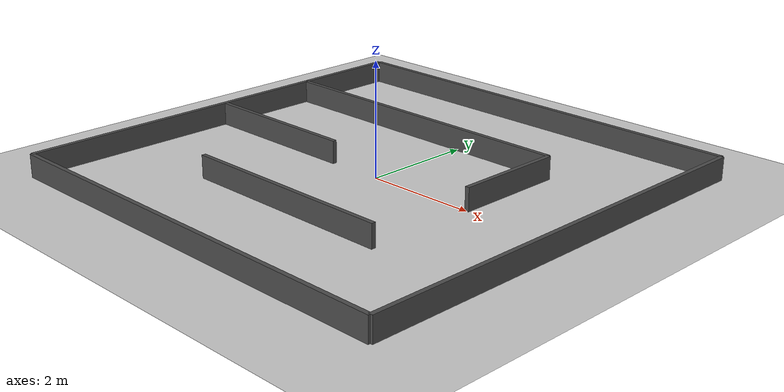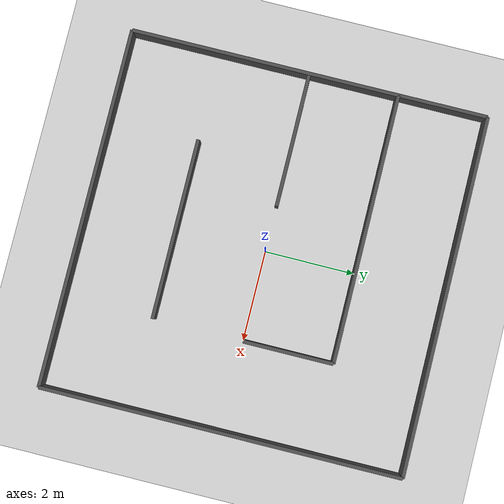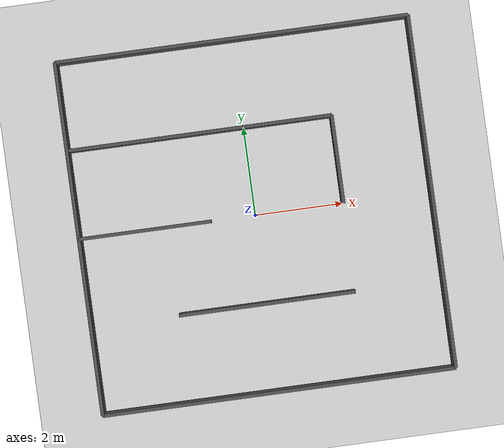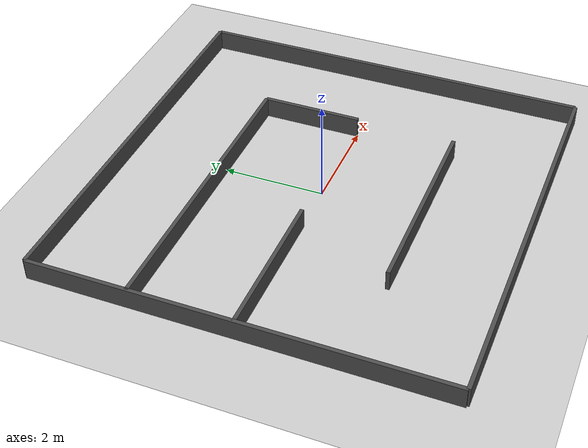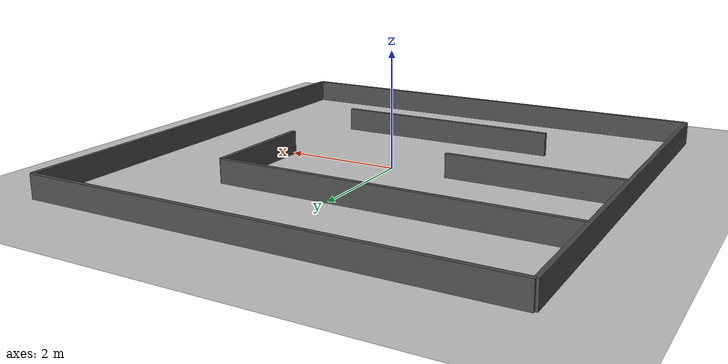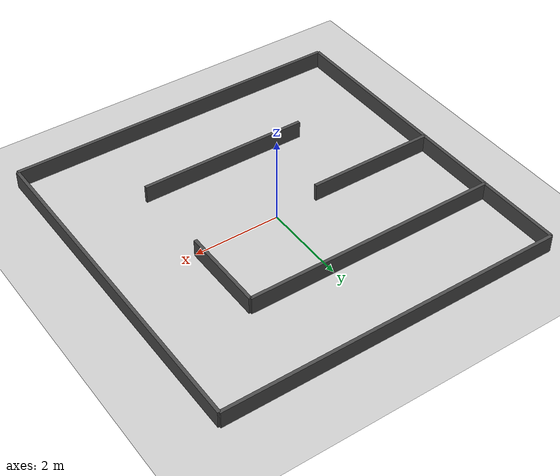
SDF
<sdf version="1.6">
 <world name="default">
  <plugin name="ros_gz_set_pose" filename="libros_gz_sim_set_entity_pose_system.so">
   <gz_args><topic>/world/default/set_entity_pose</topic></gz_args>
  </plugin>
  <plugin filename="gz-sim-physics-system" name="gz::sim::systems::Physics"/>
  <plugin filename="gz-sim-user-commands-system" name="gz::sim::systems::UserCommands"/>
  <plugin filename="gz-sim-scene-broadcaster-system" name="gz::sim::systems::SceneBroadcaster"/>
  <plugin filename="gz-sim-sensors-system" name="gz::sim::systems::Sensors">
   <render_engine>ogre2</render_engine>
  </plugin>
  <plugin filename="gz-sim-imu-system" name="gz::sim::systems::Imu"/>
  <light name="maze_sun" type="directional">
   <pose>0 0 10 0 -0 0</pose>
   <diffuse>0.8 0.8 0.8 1</diffuse>
   <specular>0.2 0.2 0.2 1</specular>
   <attenuation>
    <range>1000</range>
    <constant>0.9</constant>
    <linear>0.01</linear>
    <quadratic>0.001</quadratic>
   </attenuation>
   <direction>-0.5 0.1 -0.9</direction>
  </light>
  <model name="ground_plane">
   <static>1</static>
   <link name="link">
    <collision name="collision">
     <geometry><plane><normal>0 0 1</normal><size>100 100</size></plane></geometry>
     <surface><friction><ode><mu>100</mu><mu2>50</mu2></ode></friction></surface>
    </collision>
    <visual name="visual">
     <cast_shadows>0</cast_shadows>
     <geometry><plane><normal>0 0 1</normal><size>100 100</size></plane></geometry>
     <material>
      <script><uri>file://media/materials/scripts/gazebo.material</uri><name>Gazebo/Grey</name></script>
     </material>
    </visual>
   </link>
  </model>
  <gravity>0 0 -9.8</gravity>
  <magnetic_field>6e-06 2.3e-05 -4.2e-05</magnetic_field>
  <atmosphere type="adiabatic"/>
  <physics name="default_physics" default="0" type="ode">
   <max_step_size>0.001</max_step_size>
   <real_time_factor>1</real_time_factor>
   <real_time_update_rate>1000</real_time_update_rate>
  </physics>
  <scene><ambient>0.4 0.4 0.4 1</ambient><background>0.7 0.7 0.7 1</background><shadows>1</shadows></scene>
  <spherical_coordinates>
   <surface_model>EARTH_WGS84</surface_model>
   <latitude_deg>0</latitude_deg>
   <longitude_deg>0</longitude_deg>
   <elevation>0</elevation>
   <heading_deg>0</heading_deg>
  </spherical_coordinates>
  <model name="unit_box_clone_0">
   <static>1</static>
   <pose>0 -2 0.2031 0 -0 0</pose>
   <link name="link">
    <inertial>
     <mass>1000</mass>
     <inertia>
      <ixx>0.166667</ixx>
      <ixy>0</ixy>
      <ixz>0</ixz>
      <iyy>0.166667</iyy>
      <iyz>0</iyz>
      <izz>0.166667</izz>
     </inertia>
    </inertial>
    <collision name="collision"><geometry><box><size>4 0.077351 0.407845</size></box></geometry></collision>
    <visual name="visual">
     <geometry><box><size>4 0.077351 0.407845</size></box></geometry>
     <material>
      <script><name>Gazebo/DarkGrey</name><uri>file://media/materials/scripts/gazebo.material</uri></script>
     </material>
    </visual>
   </link>
  </model>
  <model name="unit_box_clone_0_clone_0_clone">
   <static>1</static>
   <pose>-2.5 0 0.2031 0 -0 0</pose>
   <link name="link">
    <inertial>
     <mass>1000</mass>
     <inertia>
      <ixx>0.166667</ixx>
      <ixy>0</ixy>
      <ixz>0</ixz>
      <iyy>0.166667</iyy>
      <iyz>0</iyz>
      <izz>0.166667</izz>
     </inertia>
    </inertial>
    <collision name="collision"><geometry><box><size>3 0.077351 0.407845</size></box></geometry></collision>
    <visual name="visual">
     <geometry><box><size>3 0.077351 0.407845</size></box></geometry>
     <material>
      <script><name>Gazebo/DarkGrey</name><uri>file://media/materials/scripts/gazebo.material</uri></script>
     </material>
    </visual>
   </link>
  </model>
  <model name="unit_box_clone_0_clone_0_clone_0">
   <static>1</static>
   <pose>-4 0 0.2031 0 0 1.5708</pose>
   <link name="link">
    <inertial>
     <mass>1000</mass>
     <inertia>
      <ixx>0.166667</ixx>
      <ixy>0</ixy>
      <ixz>0</ixz>
      <iyy>0.166667</iyy>
      <iyz>0</iyz>
      <izz>0.166667</izz>
     </inertia>
    </inertial>
    <collision name="collision"><geometry><box><size>8 0.077351 0.407845</size></box></geometry></collision>
    <visual name="visual">
     <geometry><box><size>8 0.077351 0.407845</size></box></geometry>
     <material>
      <script><name>Gazebo/DarkGrey</name><uri>file://media/materials/scripts/gazebo.material</uri></script>
     </material>
    </visual>
   </link>
  </model>
  <model name="unit_box_clone_0_clone_0_clone_0_clone_clone">
   <static>1</static>
   <pose>2 1 0.2031 0 0 1.5708</pose>
   <link name="link">
    <inertial>
     <mass>1000</mass>
     <inertia>
      <ixx>0.166667</ixx>
      <ixy>0</ixy>
      <ixz>0</ixz>
      <iyy>0.166667</iyy>
      <iyz>0</iyz>
      <izz>0.166667</izz>
     </inertia>
    </inertial>
    <collision name="collision"><geometry><box><size>2 0.077351 0.407845</size></box></geometry></collision>
    <visual name="visual">
     <geometry><box><size>2 0.077351 0.407845</size></box></geometry>
     <material>
      <script><name>Gazebo/DarkGrey</name><uri>file://media/materials/scripts/gazebo.material</uri></script>
     </material>
    </visual>
   </link>
  </model>
  <model name="unit_box_clone_0_clone_clone_clone_clone_clone">
   <static>1</static>
   <pose>0 4 0.2031 0 -0 0</pose>
   <link name="link">
    <inertial>
     <mass>1000</mass>
     <inertia>
      <ixx>0.166667</ixx>
      <ixy>0</ixy>
      <ixz>0</ixz>
      <iyy>0.166667</iyy>
      <iyz>0</iyz>
      <izz>0.166667</izz>
     </inertia>
    </inertial>
    <collision name="collision"><geometry><box><size>8 0.077351 0.407845</size></box></geometry></collision>
    <visual name="visual">
     <geometry><box><size>8 0.077351 0.407845</size></box></geometry>
     <material>
      <script><name>Gazebo/DarkGrey</name><uri>file://media/materials/scripts/gazebo.material</uri></script>
     </material>
    </visual>
   </link>
  </model>
  <model name="unit_box_clone_0_clone_0_clone_0_clone_clone_clone_0">
   <static>1</static>
   <pose>4 0 0.2031 0 -0 1.5708</pose>
   <link name="link">
    <inertial>
     <mass>1000</mass>
     <inertia>
      <ixx>0.166667</ixx>
      <ixy>0</ixy>
      <ixz>0</ixz>
      <iyy>0.166667</iyy>
      <iyz>0</iyz>
      <izz>0.166667</izz>
     </inertia>
    </inertial>
    <collision name="collision"><geometry><box><size>8 0.077351 0.407845</size></box></geometry></collision>
    <visual name="visual">
     <geometry><box><size>8 0.077351 0.407845</size></box></geometry>
     <material>
      <script><name>Gazebo/DarkGrey</name><uri>file://media/materials/scripts/gazebo.material</uri></script>
     </material>
    </visual>
   </link>
  </model>
  <model name="unit_box_clone_0_clone_clone_0">
   <static>1</static>
   <pose>-1 2 0.2031 0 -0 0</pose>
   <link name="link">
    <inertial>
     <mass>1000</mass>
     <inertia>
      <ixx>0.166667</ixx>
      <ixy>0</ixy>
      <ixz>0</ixz>
      <iyy>0.166667</iyy>
      <iyz>0</iyz>
      <izz>0.166667</izz>
     </inertia>
    </inertial>
    <collision name="collision"><geometry><box><size>6 0.077351 0.407845</size></box></geometry></collision>
    <visual name="visual">
     <geometry><box><size>6 0.077351 0.407845</size></box></geometry>
     <material>
      <script><name>Gazebo/DarkGrey</name><uri>file://media/materials/scripts/gazebo.material</uri></script>
     </material>
    </visual>
   </link>
  </model>
  <model name="unit_box_clone_0_clone_1">
   <static>1</static>
   <pose>0 -4 0.2031 0 -0 0</pose>
   <link name="link">
    <inertial>
     <mass>1000</mass>
     <inertia>
      <ixx>0.166667</ixx>
      <ixy>0</ixy>
      <ixz>0</ixz>
      <iyy>0.166667</iyy>
      <iyz>0</iyz>
      <izz>0.166667</izz>
     </inertia>
    </inertial>
    <collision name="collision"><geometry><box><size>8 0.077351 0.407845</size></box></geometry></collision>
    <visual name="visual">
     <geometry><box><size>8 0.077351 0.407845</size></box></geometry>
     <material>
      <script><name>Gazebo/DarkGrey</name><uri>file://media/materials/scripts/gazebo.material</uri></script>
     </material>
    </visual>
   </link>
  </model>
  <audio><device>default</device></audio>
 </world>
</sdf>
